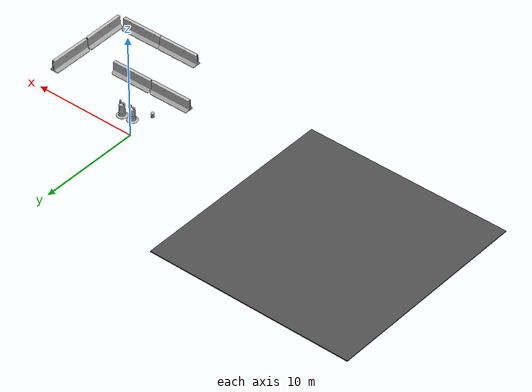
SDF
<sdf version="1.4">
 <world name="default">
  <model name="asphalt_plane">
   <static>1</static>
   <link name="link">
    <collision name="collision"><geometry><box><size>20 20 0.1</size></box></geometry></collision>
    <visual name="visual">
     <cast_shadows>0</cast_shadows>
     <geometry><box><size>20 20 0.1</size></box></geometry>
     <material>
      <script>
       <uri>model://asphalt_plane/materials/scripts</uri>
       <uri>model://asphalt_plane/materials/textures</uri>
       <name>vrc/asphalt</name>
      </script>
     </material>
    </visual>
    <velocity_decay><linear>0</linear><angular>0</angular></velocity_decay>
   </link>
   <pose>-20.8561 -0.082108 0 0 -0 0</pose>
  </model>
  <model name="jersey_barrier_2">
   <static>1</static>
   <link name="link">
    <visual name="visual">
     <geometry><mesh><uri>model://jersey_barrier/meshes/jersey_barrier.dae</uri></mesh></geometry>
    </visual>
    <collision name="upright">
     <pose>0 0 0.5715 0 -0 0</pose>
     <geometry><box><size>4.06542 0.3063 1.143</size></box></geometry>
    </collision>
    <collision name="base">
     <pose>0 0 0.032258 0 -0 0</pose>
     <geometry><box><size>4.06542 0.8107 0.064516</size></box></geometry>
    </collision>
    <collision name="base2">
     <pose>0 0 0.1 0 -0 0</pose>
     <geometry><box><size>4.06542 0.65 0.1</size></box></geometry>
    </collision>
    <collision name="base3">
     <pose>0 0 0.2 0 -0 0</pose>
     <geometry><box><size>4.06542 0.5 0.1</size></box></geometry>
    </collision>
    <collision name="left-angle">
     <pose>0 -0.224 0.2401 0.9 -0 0</pose>
     <geometry><box><size>4.06542 0.5 0.064516</size></box></geometry>
    </collision>
    <collision name="right-angle">
     <pose>0 0.224 0.2401 -0.9 0 0</pose>
     <geometry><box><size>4.06542 0.5 0.064516</size></box></geometry>
    </collision>
    <velocity_decay><linear>0</linear><angular>0</angular></velocity_decay>
   </link>
   <pose>7.90162 -10.4784 0 0 -0 0</pose>
  </model>
  <model name="jersey_barrier_3">
   <static>1</static>
   <link name="link">
    <visual name="visual">
     <geometry><mesh><uri>model://jersey_barrier/meshes/jersey_barrier.dae</uri></mesh></geometry>
    </visual>
    <collision name="upright">
     <pose>0 0 0.5715 0 -0 0</pose>
     <geometry><box><size>4.06542 0.3063 1.143</size></box></geometry>
    </collision>
    <collision name="base">
     <pose>0 0 0.032258 0 -0 0</pose>
     <geometry><box><size>4.06542 0.8107 0.064516</size></box></geometry>
    </collision>
    <collision name="base2">
     <pose>0 0 0.1 0 -0 0</pose>
     <geometry><box><size>4.06542 0.65 0.1</size></box></geometry>
    </collision>
    <collision name="base3">
     <pose>0 0 0.2 0 -0 0</pose>
     <geometry><box><size>4.06542 0.5 0.1</size></box></geometry>
    </collision>
    <collision name="left-angle">
     <pose>0 -0.224 0.2401 0.9 -0 0</pose>
     <geometry><box><size>4.06542 0.5 0.064516</size></box></geometry>
    </collision>
    <collision name="right-angle">
     <pose>0 0.224 0.2401 -0.9 0 0</pose>
     <geometry><box><size>4.06542 0.5 0.064516</size></box></geometry>
    </collision>
    <velocity_decay><linear>0</linear><angular>0</angular></velocity_decay>
   </link>
   <pose>3.84037 -10.4642 0 0 -0 0</pose>
  </model>
  <model name="jersey_barrier_12">
   <static>1</static>
   <link name="link">
    <visual name="visual">
     <geometry><mesh><uri>model://jersey_barrier/meshes/jersey_barrier.dae</uri></mesh></geometry>
    </visual>
    <collision name="upright">
     <pose>0 0 0.5715 0 -0 0</pose>
     <geometry><box><size>4.06542 0.3063 1.143</size></box></geometry>
    </collision>
    <collision name="base">
     <pose>0 0 0.032258 0 -0 0</pose>
     <geometry><box><size>4.06542 0.8107 0.064516</size></box></geometry>
    </collision>
    <collision name="base2">
     <pose>0 0 0.1 0 -0 0</pose>
     <geometry><box><size>4.06542 0.65 0.1</size></box></geometry>
    </collision>
    <collision name="base3">
     <pose>0 0 0.2 0 -0 0</pose>
     <geometry><box><size>4.06542 0.5 0.1</size></box></geometry>
    </collision>
    <collision name="left-angle">
     <pose>0 -0.224 0.2401 0.9 -0 0</pose>
     <geometry><box><size>4.06542 0.5 0.064516</size></box></geometry>
    </collision>
    <collision name="right-angle">
     <pose>0 0.224 0.2401 -0.9 0 0</pose>
     <geometry><box><size>4.06542 0.5 0.064516</size></box></geometry>
    </collision>
    <velocity_decay><linear>0</linear><angular>0</angular></velocity_decay>
   </link>
   <pose>10.4585 -4.20481 0 0 -0 1.56409</pose>
  </model>
  <model name="jersey_barrier_13">
   <static>1</static>
   <link name="link">
    <visual name="visual">
     <geometry><mesh><uri>model://jersey_barrier/meshes/jersey_barrier.dae</uri></mesh></geometry>
    </visual>
    <collision name="upright">
     <pose>0 0 0.5715 0 -0 0</pose>
     <geometry><box><size>4.06542 0.3063 1.143</size></box></geometry>
    </collision>
    <collision name="base">
     <pose>0 0 0.032258 0 -0 0</pose>
     <geometry><box><size>4.06542 0.8107 0.064516</size></box></geometry>
    </collision>
    <collision name="base2">
     <pose>0 0 0.1 0 -0 0</pose>
     <geometry><box><size>4.06542 0.65 0.1</size></box></geometry>
    </collision>
    <collision name="base3">
     <pose>0 0 0.2 0 -0 0</pose>
     <geometry><box><size>4.06542 0.5 0.1</size></box></geometry>
    </collision>
    <collision name="left-angle">
     <pose>0 -0.224 0.2401 0.9 -0 0</pose>
     <geometry><box><size>4.06542 0.5 0.064516</size></box></geometry>
    </collision>
    <collision name="right-angle">
     <pose>0 0.224 0.2401 -0.9 0 0</pose>
     <geometry><box><size>4.06542 0.5 0.064516</size></box></geometry>
    </collision>
    <velocity_decay><linear>0</linear><angular>0</angular></velocity_decay>
   </link>
   <pose>10.464 -8.37709 0.004229 0 -0 1.58529</pose>
  </model>
  <model name="jersey_barrier_19">
   <static>1</static>
   <link name="link">
    <visual name="visual">
     <geometry><mesh><uri>model://jersey_barrier/meshes/jersey_barrier.dae</uri></mesh></geometry>
    </visual>
    <collision name="upright">
     <pose>0 0 0.5715 0 -0 0</pose>
     <geometry><box><size>4.06542 0.3063 1.143</size></box></geometry>
    </collision>
    <collision name="base">
     <pose>0 0 0.032258 0 -0 0</pose>
     <geometry><box><size>4.06542 0.8107 0.064516</size></box></geometry>
    </collision>
    <collision name="base2">
     <pose>0 0 0.1 0 -0 0</pose>
     <geometry><box><size>4.06542 0.65 0.1</size></box></geometry>
    </collision>
    <collision name="base3">
     <pose>0 0 0.2 0 -0 0</pose>
     <geometry><box><size>4.06542 0.5 0.1</size></box></geometry>
    </collision>
    <collision name="left-angle">
     <pose>0 -0.224 0.2401 0.9 -0 0</pose>
     <geometry><box><size>4.06542 0.5 0.064516</size></box></geometry>
    </collision>
    <collision name="right-angle">
     <pose>0 0.224 0.2401 -0.9 0 0</pose>
     <geometry><box><size>4.06542 0.5 0.064516</size></box></geometry>
    </collision>
    <velocity_decay><linear>0</linear><angular>0</angular></velocity_decay>
   </link>
   <pose>4.56377 -5.46319 0 0 -0 0</pose>
  </model>
  <model name="jersey_barrier_20">
   <static>1</static>
   <link name="link">
    <visual name="visual">
     <geometry><mesh><uri>model://jersey_barrier/meshes/jersey_barrier.dae</uri></mesh></geometry>
    </visual>
    <collision name="upright">
     <pose>0 0 0.5715 0 -0 0</pose>
     <geometry><box><size>4.06542 0.3063 1.143</size></box></geometry>
    </collision>
    <collision name="base">
     <pose>0 0 0.032258 0 -0 0</pose>
     <geometry><box><size>4.06542 0.8107 0.064516</size></box></geometry>
    </collision>
    <collision name="base2">
     <pose>0 0 0.1 0 -0 0</pose>
     <geometry><box><size>4.06542 0.65 0.1</size></box></geometry>
    </collision>
    <collision name="base3">
     <pose>0 0 0.2 0 -0 0</pose>
     <geometry><box><size>4.06542 0.5 0.1</size></box></geometry>
    </collision>
    <collision name="left-angle">
     <pose>0 -0.224 0.2401 0.9 -0 0</pose>
     <geometry><box><size>4.06542 0.5 0.064516</size></box></geometry>
    </collision>
    <collision name="right-angle">
     <pose>0 0.224 0.2401 -0.9 0 0</pose>
     <geometry><box><size>4.06542 0.5 0.064516</size></box></geometry>
    </collision>
    <velocity_decay><linear>0</linear><angular>0</angular></velocity_decay>
   </link>
   <pose>0.38285 -5.47894 0 0 -0 0</pose>
  </model>
  <model name="Construction Barrel">
   <link name="link">
    <inertial>
     <pose>0 0 0.4 0 -0 0</pose>
     <mass>500</mass>
     <inertia><ixx>51.2096</ixx><iyy>51.2096</iyy><izz>25</izz><ixy>0</ixy><ixz>0</ixz><iyz>0</iyz></inertia>
    </inertial>
    <collision name="collision">
     <geometry><mesh><uri>model://construction_barrel/meshes/construction_barrel.dae</uri></mesh></geometry>
    </collision>
    <visual name="visual">
     <geometry><mesh><uri>model://construction_barrel/meshes/construction_barrel.dae</uri></mesh></geometry>
    </visual>
    <velocity_decay><linear>0</linear><angular>0</angular></velocity_decay>
   </link>
   <pose>1.21514 -1.61009 -0.00017 -6.9e-05 -0.000543 0.007031</pose>
   <static>0</static>
  </model>
  <model name="Construction Barrel_0">
   <link name="link">
    <inertial>
     <pose>0 0 0.4 0 -0 0</pose>
     <mass>500</mass>
     <inertia><ixx>51.2096</ixx><iyy>51.2096</iyy><izz>25</izz><ixy>0</ixy><ixz>0</ixz><iyz>0</iyz></inertia>
    </inertial>
    <collision name="collision">
     <geometry><mesh><uri>model://construction_barrel/meshes/construction_barrel.dae</uri></mesh></geometry>
    </collision>
    <visual name="visual">
     <geometry><mesh><uri>model://construction_barrel/meshes/construction_barrel.dae</uri></mesh></geometry>
    </visual>
    <velocity_decay><linear>0</linear><angular>0</angular></velocity_decay>
   </link>
   <pose>2.26405 -1.52529 -9.2e-05 -9.3e-05 -0.000348 -0.034982</pose>
   <static>0</static>
  </model>
  <model name="turtlebot_3">
   <link name="rack">
    <inertial>
     <pose>0.001453 -0.000453 0.029787 0 -0 0</pose>
     <inertia>
      <ixx>0.05864</ixx>
      <ixy>0.000124</ixy>
      <ixz>0.000615</ixz>
      <iyy>0.058786</iyy>
      <iyz>1.4e-05</iyz>
      <izz>1.53244</izz>
     </inertia>
     <mass>2.234</mass>
    </inertial>
    <collision name="plate_0_collision">
     <pose>-0.04334 0 0.084757 0 -0 0</pose>
     <geometry><box><size>0.233502 0.314845 0.006401</size></box></geometry>
    </collision>
    <visual name="plate_0_visual">
     <pose>-0.04334 0 0.084757 0 -0 0</pose>
     <geometry><mesh><uri>model://turtlebot/meshes/plate_0_logo.dae</uri></mesh></geometry>
    </visual>
    <collision name="plate_1_collision">
     <pose>-0.00266 0 0.141907 0 -0 0</pose>
     <geometry><box><size>0.314856 0.314856 0.006401</size></box></geometry>
    </collision>
    <visual name="plate_1_visual">
     <pose>-0.00266 0 0.141907 0 -0 0</pose>
     <geometry><mesh><uri>model://turtlebot/meshes/plate_1_logo.dae</uri></mesh></geometry>
    </visual>
    <collision name="plate_2_collision">
     <pose>-0.00266 0 0.199108 0 -0 0</pose>
     <geometry><box><size>0.314856 0.314856 0.006401</size></box></geometry>
    </collision>
    <visual name="plate_2_visual">
     <pose>-0.00266 0 0.199108 0 -0 0</pose>
     <geometry><mesh><uri>model://turtlebot/meshes/plate_1_logo.dae</uri></mesh></geometry>
    </visual>
    <collision name="plate_3_collision">
     <pose>-0.01582 0 0.405457 0 -0 0</pose>
     <geometry><box><size>0.288 0.315 0.006401</size></box></geometry>
    </collision>
    <visual name="plate_3_visual">
     <pose>-0.01582 0 0.405457 0 -0 0</pose>
     <geometry><mesh><uri>model://turtlebot/meshes/plate_2_logo.dae</uri></mesh></geometry>
    </visual>
    <collision name="spacer_0_collision">
     <pose>-0.00254 0.111468 0.079992 0 -0 0</pose>
     <geometry><cylinder><radius>0.0127</radius><length>0.003175</length></cylinder></geometry>
    </collision>
    <visual name="spacer_0_visual">
     <pose>-0.00254 0.111468 0.079992 0 -0 0</pose>
     <geometry><mesh><uri>model://turtlebot/meshes/68-02403-125_Spacer.dae</uri></mesh></geometry>
    </visual>
    <collision name="spacer_1_collision">
     <pose>-0.00254 -0.111468 0.079992 0 -0 0</pose>
     <geometry><cylinder><radius>0.0127</radius><length>0.003175</length></cylinder></geometry>
    </collision>
    <visual name="spacer_1_visual">
     <pose>-0.00254 -0.111468 0.079992 0 -0 0</pose>
     <geometry><mesh><uri>model://turtlebot/meshes/68-02403-125_Spacer.dae</uri></mesh></geometry>
    </visual>
    <collision name="spacer_2_collision">
     <pose>-0.07239 -0.111468 0.079992 0 -0 0</pose>
     <geometry><cylinder><radius>0.0127</radius><length>0.003175</length></cylinder></geometry>
    </collision>
    <visual name="spacer_2_visual">
     <pose>-0.07239 -0.111468 0.079992 0 -0 0</pose>
     <geometry><mesh><uri>model://turtlebot/meshes/68-02403-125_Spacer.dae</uri></mesh></geometry>
    </visual>
    <collision name="spacer_3_collision">
     <pose>-0.07239 0.111468 0.079992 0 -0 0</pose>
     <geometry><cylinder><radius>0.0127</radius><length>0.003175</length></cylinder></geometry>
    </collision>
    <visual name="spacer_3_visual">
     <pose>-0.07239 0.111468 0.079992 0 -0 0</pose>
     <geometry><mesh><uri>model://turtlebot/meshes/68-02403-125_Spacer.dae</uri></mesh></geometry>
    </visual>
    <collision name="standoff_2in_0_collision">
     <pose>0.06764 0.13142 0.08798 0 -0 0</pose>
     <geometry><cylinder><radius>0.0381</radius><length>0.0635</length></cylinder></geometry>
    </collision>
    <visual name="standoff_2in_0_visual">
     <pose>0.06764 0.13142 0.08798 0 -0 0</pose>
     <geometry>
      <mesh><uri>model://turtlebot/meshes/68-04552-2000-RA_Turtlebot_M-F_Standoff.dae</uri></mesh>
     </geometry>
    </visual>
    <collision name="standoff_2in_1_collision">
     <pose>0.06764 -0.13142 0.08798 0 -0 0</pose>
     <geometry><cylinder><radius>0.0381</radius><length>0.0635</length></cylinder></geometry>
    </collision>
    <visual name="standoff_2in_1_visual">
     <pose>0.06764 -0.13142 0.08798 0 -0 0</pose>
     <geometry>
      <mesh><uri>model://turtlebot/meshes/68-04552-2000-RA_Turtlebot_M-F_Standoff.dae</uri></mesh>
     </geometry>
    </visual>
    <collision name="standoff_2in_2_collision">
     <pose>-0.052832 -0.13142 0.08798 0 -0 0</pose>
     <geometry><cylinder><radius>0.0381</radius><length>0.0635</length></cylinder></geometry>
    </collision>
    <visual name="standoff_2in_2_visual">
     <pose>-0.052832 -0.13142 0.08798 0 -0 0</pose>
     <geometry>
      <mesh><uri>model://turtlebot/meshes/68-04552-2000-RA_Turtlebot_M-F_Standoff.dae</uri></mesh>
     </geometry>
    </visual>
    <collision name="standoff_2in_3_collision">
     <pose>-0.052832 0.13142 0.08798 0 -0 0</pose>
     <geometry><cylinder><radius>0.0381</radius><length>0.0635</length></cylinder></geometry>
    </collision>
    <visual name="standoff_2in_3_visual">
     <pose>-0.052832 0.13142 0.08798 0 -0 0</pose>
     <geometry>
      <mesh><uri>model://turtlebot/meshes/68-04552-2000-RA_Turtlebot_M-F_Standoff.dae</uri></mesh>
     </geometry>
    </visual>
    <collision name="standoff_2in_4_collision">
     <pose>0.06764 0.13142 0.14513 0 -0 0</pose>
     <geometry><cylinder><radius>0.0381</radius><length>0.0635</length></cylinder></geometry>
    </collision>
    <visual name="standoff_2in_4_visual">
     <pose>0.06764 0.13142 0.14513 0 -0 0</pose>
     <geometry>
      <mesh><uri>model://turtlebot/meshes/68-04552-2000-RA_Turtlebot_M-F_Standoff.dae</uri></mesh>
     </geometry>
    </visual>
    <collision name="standoff_2in_5_collision">
     <pose>0.06764 -0.13142 0.14513 0 -0 0</pose>
     <geometry><cylinder><radius>0.0381</radius><length>0.0635</length></cylinder></geometry>
    </collision>
    <visual name="standoff_2in_5_visual">
     <pose>0.06764 -0.13142 0.14513 0 -0 0</pose>
     <geometry>
      <mesh><uri>model://turtlebot/meshes/68-04552-2000-RA_Turtlebot_M-F_Standoff.dae</uri></mesh>
     </geometry>
    </visual>
    <collision name="standoff_2in_6_collision">
     <pose>-0.052832 -0.13142 0.14513 0 -0 0</pose>
     <geometry><cylinder><radius>0.0381</radius><length>0.0635</length></cylinder></geometry>
    </collision>
    <visual name="standoff_2in_6_visual">
     <pose>-0.052832 -0.13142 0.14513 0 -0 0</pose>
     <geometry>
      <mesh><uri>model://turtlebot/meshes/68-04552-2000-RA_Turtlebot_M-F_Standoff.dae</uri></mesh>
     </geometry>
    </visual>
    <collision name="standoff_2in_7_collision">
     <pose>-0.052832 0.13142 0.14513 0 -0 0</pose>
     <geometry><cylinder><radius>0.0381</radius><length>0.0635</length></cylinder></geometry>
    </collision>
    <visual name="standoff_2in_7_visual">
     <pose>-0.052832 0.13142 0.14513 0 -0 0</pose>
     <geometry>
      <mesh><uri>model://turtlebot/meshes/68-04552-2000-RA_Turtlebot_M-F_Standoff.dae</uri></mesh>
     </geometry>
    </visual>
    <collision name="standoff_8in_0_collision">
     <pose>0.06764 0.13142 0.20228 0 -0 0</pose>
     <geometry><cylinder><radius>0.011113</radius><length>0.2032</length></cylinder></geometry>
    </collision>
    <visual name="standoff_8in_0_visual">
     <pose>0.06764 0.13142 0.20228 0 -0 0</pose>
     <geometry>
      <mesh><uri>model://turtlebot/meshes/68-02421-8000-RA_Turtlebot_F-F_Standoff.dae</uri></mesh>
     </geometry>
    </visual>
    <collision name="standoff_8in_1_collision">
     <pose>0.06764 -0.13142 0.20228 0 -0 0</pose>
     <geometry><cylinder><radius>0.011113</radius><length>0.2032</length></cylinder></geometry>
    </collision>
    <visual name="standoff_8in_1_visual">
     <pose>0.06764 -0.13142 0.20228 0 -0 0</pose>
     <geometry>
      <mesh><uri>model://turtlebot/meshes/68-02421-8000-RA_Turtlebot_F-F_Standoff.dae</uri></mesh>
     </geometry>
    </visual>
    <collision name="standoff_8in_2_collision">
     <pose>-0.052832 -0.13142 0.20228 0 -0 0</pose>
     <geometry><cylinder><radius>0.011113</radius><length>0.2032</length></cylinder></geometry>
    </collision>
    <visual name="standoff_8in_2_visual">
     <pose>-0.052832 -0.13142 0.20228 0 -0 0</pose>
     <geometry>
      <mesh><uri>model://turtlebot/meshes/68-02421-8000-RA_Turtlebot_F-F_Standoff.dae</uri></mesh>
     </geometry>
    </visual>
    <collision name="standoff_8in_3_collision">
     <pose>-0.052832 0.13142 0.20228 0 -0 0</pose>
     <geometry><cylinder><radius>0.011113</radius><length>0.2032</length></cylinder></geometry>
    </collision>
    <visual name="standoff_8in_3_visual">
     <pose>-0.052832 0.13142 0.20228 0 -0 0</pose>
     <geometry>
      <mesh><uri>model://turtlebot/meshes/68-02421-8000-RA_Turtlebot_F-F_Standoff.dae</uri></mesh>
     </geometry>
    </visual>
    <collision name="standoff_kinect_0_collision">
     <pose>-0.105098 0.098 0.202308 0 -0 0</pose>
     <geometry><cylinder><radius>0.001111</radius><length>0.008585</length></cylinder></geometry>
    </collision>
    <visual name="standoff_kinect_0_visual">
     <pose>-0.105098 0.098 0.202308 0 -0 0</pose>
     <geometry><mesh><uri>model://turtlebot/meshes/68-04556-RA_Kinect_Standoff_Assy.dae</uri></mesh></geometry>
    </visual>
    <collision name="standoff_kinect_1_collision">
     <pose>-0.105098 -0.098 0.202308 0 -0 0</pose>
     <geometry><cylinder><radius>0.001111</radius><length>0.008585</length></cylinder></geometry>
    </collision>
    <visual name="standoff_kinect_1_visual">
     <pose>-0.105098 -0.098 0.202308 0 -0 0</pose>
     <geometry><mesh><uri>model://turtlebot/meshes/68-04556-RA_Kinect_Standoff_Assy.dae</uri></mesh></geometry>
    </visual>
    <sensor name="laser" type="ray">
     <pose>-0.065 0 0.092 0 -0 0</pose>
     <ray>
      <scan>
       <horizontal>
        <samples>180</samples>
        <resolution>1</resolution>
        <min_angle>-2.26893</min_angle>
        <max_angle>2.26893</max_angle>
       </horizontal>
      </scan>
      <range><min>0.08</min><max>10</max><resolution>0.01</resolution></range>
     </ray>
     <update_rate>20</update_rate>
    </sensor>
    <velocity_decay><linear>0</linear><angular>0</angular></velocity_decay>
   </link>
   <link name="create::base">
    <inertial>
     <pose>0.001453 -0.000453 0.029787 0 -0 0</pose>
     <inertia>
      <ixx>0.05864</ixx>
      <ixy>0.000124</ixy>
      <ixz>0.000615</ixz>
      <iyy>0.058786</iyy>
      <iyz>1.4e-05</iyz>
      <izz>1.53244</izz>
     </inertia>
     <mass>2.234</mass>
    </inertial>
    <collision name="base_collision">
     <pose>0 0 0.0478 0 -0 0</pose>
     <geometry><cylinder><radius>0.016495</radius><length>0.061163</length></cylinder></geometry>
    </collision>
    <visual name="base_visual">
     <pose>0 0 0.0478 0 -0 0</pose>
     <geometry><mesh><uri>model://create/meshes/create_body.dae</uri></mesh></geometry>
    </visual>
    <collision name="front_wheel_collision">
     <pose>0.13 0 0.017 -5.76279e-13 1.5707 1.5707</pose>
     <geometry><sphere><radius>0.018</radius></sphere></geometry>
     <surface>
      <friction><ode><mu>0</mu><mu2>0</mu2><fdir1>0 0 0</fdir1><slip1>0</slip1><slip2>0</slip2></ode></friction>
     </surface>
    </collision>
    <visual name="front_wheel_visual">
     <pose>0.13 0 0.017 -5.76279e-13 1.5707 1.5707</pose>
     <geometry><sphere><radius>0.009</radius></sphere></geometry>
    </visual>
    <collision name="rear_wheel_collision">
     <pose>-0.13 0 0.017 -5.76279e-13 1.5707 1.5707</pose>
     <geometry><sphere><radius>0.015</radius></sphere></geometry>
     <surface>
      <friction><ode><mu>0</mu><mu2>0</mu2><fdir1>0 0 0</fdir1><slip1>0</slip1><slip2>0</slip2></ode></friction>
     </surface>
    </collision>
    <visual name="rear_wheel_visual">
     <pose>-0.13 0 0.017 -5.76279e-13 1.5707 1.5707</pose>
     <geometry><sphere><radius>0.0075</radius></sphere></geometry>
    </visual>
    <sensor name="left_cliff_sensor" type="ray">
     <pose>0.07 0.14 0.027 0 1.57079 0</pose>
     <ray>
      <scan>
       <horizontal>
        <samples>1</samples>
        <resolution>1</resolution>
        <min_angle>0</min_angle>
        <max_angle>0</max_angle>
       </horizontal>
      </scan>
      <range><min>0.01</min><max>0.04</max><resolution>0.1</resolution></range>
     </ray>
    </sensor>
    <sensor name="leftfront_cliff_sensor" type="ray">
     <pose>0.15 0.04 0.027 0 1.57079 0</pose>
     <ray>
      <scan>
       <horizontal>
        <samples>1</samples>
        <resolution>1</resolution>
        <min_angle>0</min_angle>
        <max_angle>0</max_angle>
       </horizontal>
      </scan>
      <range><min>0.01</min><max>0.04</max><resolution>0.1</resolution></range>
     </ray>
    </sensor>
    <sensor name="right_cliff_sensor" type="ray">
     <pose>0.07 -0.14 0.027 0 1.57079 0</pose>
     <ray>
      <scan>
       <horizontal>
        <samples>1</samples>
        <resolution>1</resolution>
        <min_angle>0</min_angle>
        <max_angle>0</max_angle>
       </horizontal>
      </scan>
      <range><min>0.01</min><max>0.04</max><resolution>0.1</resolution></range>
     </ray>
    </sensor>
    <sensor name="rightfront_cliff_sensor" type="ray">
     <pose>0.15 -0.04 0.027 0 1.57079 0</pose>
     <ray>
      <scan>
       <horizontal>
        <samples>1</samples>
        <resolution>1</resolution>
        <min_angle>0</min_angle>
        <max_angle>0</max_angle>
       </horizontal>
      </scan>
      <range><min>0.01</min><max>0.04</max><resolution>0.1</resolution></range>
     </ray>
    </sensor>
    <sensor name="wall_sensor" type="ray">
     <pose>0.09 -0.12 0.059 0 0 -1</pose>
     <ray>
      <scan>
       <horizontal>
        <samples>1</samples>
        <resolution>1</resolution>
        <min_angle>0</min_angle>
        <max_angle>0</max_angle>
       </horizontal>
      </scan>
      <range><min>0.016</min><max>0.04</max><resolution>0.1</resolution></range>
     </ray>
    </sensor>
    <velocity_decay><linear>0</linear><angular>0</angular></velocity_decay>
   </link>
   <link name="create::left_wheel">
    <pose>0 0.13 0.032 0 -0 0</pose>
    <inertial>
     <inertia><ixx>0.001</ixx><ixy>0</ixy><ixz>0</ixz><iyy>0.001</iyy><iyz>0</iyz><izz>0.001</izz></inertia>
     <mass>0.01</mass>
    </inertial>
    <collision name="collision">
     <pose>0 0 0 -5.76279e-13 1.5707 1.5707</pose>
     <geometry><cylinder><radius>0.033</radius><length>0.023</length></cylinder></geometry>
     <surface>
      <friction><ode><mu>10</mu><mu2>10</mu2><fdir1>0 0 0</fdir1><slip1>0</slip1><slip2>0</slip2></ode></friction>
     </surface>
    </collision>
    <visual name="visual">
     <pose>0 0 0 -5.76279e-13 1.5707 1.5707</pose>
     <geometry><cylinder><radius>0.033</radius><length>0.023</length></cylinder></geometry>
    </visual>
    <velocity_decay><linear>0</linear><angular>0</angular></velocity_decay>
   </link>
   <link name="create::right_wheel">
    <pose>0 -0.13 0.032 0 -0 0</pose>
    <inertial>
     <inertia><ixx>0.001</ixx><ixy>0</ixy><ixz>0</ixz><iyy>0.001</iyy><iyz>0</iyz><izz>0.001</izz></inertia>
     <mass>0.01</mass>
    </inertial>
    <collision name="collision">
     <pose>0 0 0 -5.76279e-13 1.5707 1.5707</pose>
     <geometry><cylinder><radius>0.033</radius><length>0.023</length></cylinder></geometry>
     <surface>
      <friction><ode><mu>10</mu><mu2>10</mu2><fdir1>0 0 0</fdir1><slip1>0</slip1><slip2>0</slip2></ode></friction>
     </surface>
    </collision>
    <visual name="visual">
     <pose>0 0 0 -5.76279e-13 1.5707 1.5707</pose>
     <geometry><cylinder><radius>0.033</radius><length>0.023</length></cylinder></geometry>
    </visual>
    <velocity_decay><linear>0</linear><angular>0</angular></velocity_decay>
   </link>
   <joint name="create::left_wheel" type="revolute">
    <parent>create::base</parent>
    <child>create::left_wheel</child>
    <axis><xyz>0 1 0</xyz><limit><lower>-1e+16</lower><upper>1e+16</upper></limit></axis>
   </joint>
   <joint name="create::right_wheel" type="revolute">
    <parent>create::base</parent>
    <child>create::right_wheel</child>
    <axis><xyz>0 1 0</xyz><limit><lower>-1e+16</lower><upper>1e+16</upper></limit></axis>
   </joint>
   <link name="kinect::link">
    <inertial>
     <mass>0.1</mass>
     <inertia><ixx>1</ixx><ixy>0</ixy><ixz>0</ixz><iyy>1</iyy><iyz>0</iyz><izz>1</izz></inertia>
    </inertial>
    <collision name="collision"><geometry><box><size>0.073 0.276 0.072</size></box></geometry></collision>
    <visual name="visual"><geometry><mesh><uri>model://kinect/meshes/kinect.dae</uri></mesh></geometry></visual>
    <sensor name="camera" type="depth">
     <update_rate>20</update_rate>
     <camera name="__default__">
      <horizontal_fov>1.0472</horizontal_fov>
      <image><width>640</width><height>480</height><format>R8G8B8</format></image>
      <clip><near>0.05</near><far>3</far></clip>
     </camera>
    </sensor>
    <velocity_decay><linear>0</linear><angular>0</angular></velocity_decay>
    <pose>-0.087098 0 0.303857 0 -0 0</pose>
   </link>
   <joint name="create_rack" type="revolute">
    <parent>create::base</parent>
    <child>rack</child>
    <axis><xyz>0 0 1</xyz><limit><lower>0</lower><upper>0</upper></limit></axis>
   </joint>
   <joint name="kinect_rack" type="revolute">
    <parent>kinect::link</parent>
    <child>rack</child>
    <axis><xyz>0 0 1</xyz><limit><lower>0</lower><upper>0</upper></limit></axis>
   </joint>
   <pose>0.218383 -2.95951 -0.0005 -0.000788 -0.011554 0.00586</pose>
   <static>0</static>
  </model>
 </world>
</sdf>
